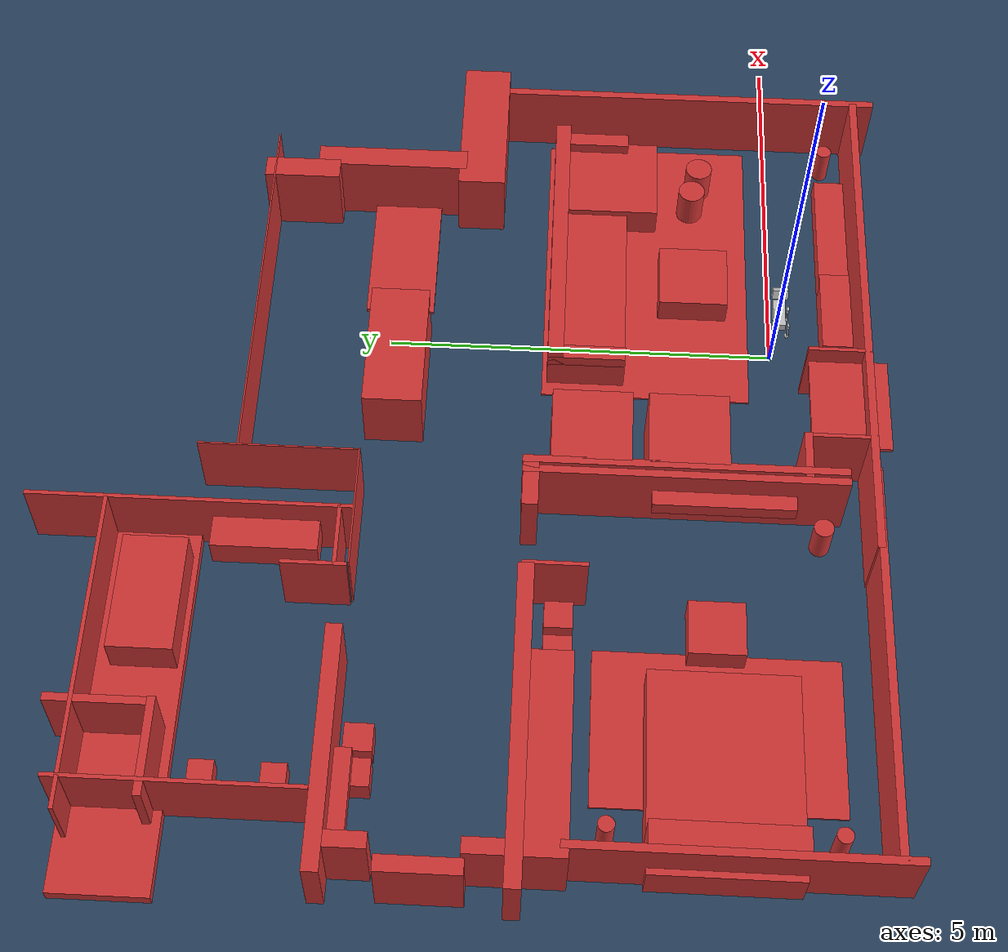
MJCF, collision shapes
<mujoco model="XXG scene">
  <include file="xxg.xml" />

  <statistic center="0 0 0.1" extent="0.8" />

  <visual>
    <headlight diffuse="0.6 0.6 0.6" ambient="0.3 0.3 0.3" specular="0 0 0" />
    <rgba haze="0.15 0.25 0.35 1" />
    <global azimuth="-130" elevation="-20" />
    <map znear="0.01" zfar="100"/>
  </visual>

  <asset>
    <texture type="skybox" builtin="gradient" rgb1="0.3 0.5 0.7" rgb2="0 0 0" width="512" height="3072" />
    <texture type="2d" name="groundplane" builtin="checker" mark="edge" rgb1="0.2 0.3 0.4" rgb2="0.1 0.2 0.3" markrgb="0.8 0.8 0.8" width="300" height="300" />
    <material name="groundplane" texture="groundplane" texuniform="true" texrepeat="5 5" reflectance="0.2" />
  <hfield name="perlin_hfield" size="1.0 0.75 0.2 0.2" file="../height_field.png" /><hfield name="image_hfield" size="1.0 1.0 0.02 0.1" file="../unitree_hfield.png" /></asset>

  <worldbody>
    <light pos="0 0 1.5" dir="0 0 -1" directional="true" />
    <geom name="floor" pos="0 0.0 0.01" size="0 0 0.01" type="plane" material="groundplane" />
<geom name="Box0" type="box" size="0.05 2.5 0.5" pos="3.65 1.1 0.5" euler="0.0 0.0 0.0" rgba="0.8 0.2 0.2 1"/>
<geom name="Box1" type="box" size="0.05 3.5 0.5" pos="0.15 -1.12 0.5" euler="0.0 0.0 1.570796" rgba="0.8 0.2 0.2 1"/>
<geom name="Box2" type="box" size="0.2 0.91 0.2" pos="1.94 -0.86 0.05" euler="0.0 0.0 1.570796" rgba="0.8 0.2 0.2 1"/>
<geom name="Box3" type="box" size="0.2 0.585 0.2" pos="0.62 -0.86 0.11" euler="0.0 0.0 1.570796" rgba="0.8 0.2 0.2 1"/>
<geom name="Box4" type="box" size="0.4 0.025 0.5" pos="-0.5 -0.76 0.5" euler="0.0 0.0 1.570796" rgba="0.8 0.2 0.2 1"/>
<geom name="Box5" type="box" size="0.4 0.025 0.5" pos="-1.8 -0.76 0.5" euler="0.0 0.0 1.570796" rgba="0.8 0.2 0.2 1"/>
<geom name="Box6" type="box" size="0.35 0.05 0.5" pos="-2.12 -0.31 0.5" euler="0.0 0.0 -0.0" rgba="0.8 0.2 0.2 1"/>
<geom name="Box7" type="box" size="2.0 0.05 0.5" pos="-2.32 1.19 0.5" euler="0.0 0.0 1.570796" rgba="0.8 0.2 0.2 1"/>
<geom name="Box8" type="box" size="1.0 0.01 0.5" pos="-2.3 6.19 0.5" euler="0.0 0.0 1.570796" rgba="0.8 0.2 0.2 1"/>
<geom name="Box9" type="box" size="2.5 0.01 0.5" pos="0.2 6.69 0.5" euler="0.0 0.0 3.141593" rgba="0.8 0.2 0.2 1"/>
<geom name="Box10" type="box" size="0.5 0.15 0.5" pos="2.14 6.32 0.5" euler="0.0 0.0 -1.570796" rgba="0.8 0.2 0.2 1"/>
<geom name="Box11" type="box" size="0.31 1.0 0.5" pos="3.0 3.91 0.5" euler="0.0 0.0 -1.570796" rgba="0.8 0.2 0.2 1"/>
<geom name="Box12" type="box" size="1.0 0.15 0.5" pos="2.37 5.12 0.5" euler="0.0 0.0 -1.570796" rgba="0.8 0.2 0.2 1"/>
<geom name="Box13" type="box" size="0.8 0.01 0.5" pos="-3.08 5.19 0.5" euler="0.0 0.0 3.141593" rgba="0.8 0.2 0.2 1"/>
<geom name="Box14" type="box" size="1.5 0.1 0.5" pos="-6.19 5.285 0.5" euler="0.0 0.0 3.141593" rgba="0.8 0.2 0.2 1"/>
<geom name="Box15" type="box" size="0.4 0.025 0.5" pos="-3.9 5.61 0.5" euler="0.0 0.0 -1.570796" rgba="0.8 0.2 0.2 1"/>
<geom name="Box16" type="box" size="1.5 0.025 0.5" pos="-6.72 6.89 0.5" euler="0.0 0.0 -1.570796" rgba="0.8 0.2 0.2 1"/>
<geom name="Box17" type="box" size="2.0 0.025 0.5" pos="-5.12 8.19 0.5" euler="0.0 0.0 -0.0" rgba="0.8 0.2 0.2 1"/>
<geom name="Box18" type="box" size="2.0 0.025 0.5" pos="-3.11 7.19 0.5" euler="0.0 0.0 1.570796" rgba="0.8 0.2 0.2 1"/>
<geom name="Box19" type="box" size="0.65 0.2 0.2" pos="-3.45 6.24 0.65" euler="0.0 0.0 -1.570796" rgba="0.8 0.2 0.2 1"/>
<geom name="Box20" type="box" size="0.4 0.025 0.5" pos="-3.5 5.36 0.5" euler="0.0 0.0 -0.0" rgba="0.8 0.2 0.2 1"/>
<geom name="Box21" type="box" size="0.2 0.15 0.15" pos="-6.42 5.86 0.3" euler="0.0 0.0 -0.0" rgba="0.8 0.2 0.2 1"/>
<geom name="Box22" type="box" size="0.2 0.15 0.15" pos="-6.42 6.7 0.3" euler="0.0 0.0 -0.0" rgba="0.8 0.2 0.2 1"/>
<geom name="Box23" type="box" size="0.6 0.05 0.5" pos="-6.32 7.27 0.5" euler="0.0 0.0 -0.0" rgba="0.8 0.2 0.2 1"/>
<geom name="Box24" type="box" size="0.6 0.05 0.5" pos="-5.78 7.92 0.5" euler="0.0 0.0 -1.570796" rgba="0.8 0.2 0.2 1"/>
<geom name="Box25" type="box" size="0.6 2.5 0.1" pos="-5.28 7.71 0.06" euler="0.0 0.0 -1.570796" rgba="0.8 0.2 0.2 1"/>
<geom name="Box26" type="box" size="0.4 0.75 0.25" pos="-4.23 7.57 0.46" euler="0.0 0.0 -1.570796" rgba="0.8 0.2 0.2 1"/>
<geom name="Box27" type="box" size="0.5 0.1 0.1" pos="-6.7 5.05 0.84" euler="0.0 0.0 3.141593" rgba="0.8 0.2 0.2 1"/>
<geom name="Box28" type="box" size="0.25 0.1 0.5" pos="-7.3 4.94 0.5" euler="0.0 0.0 1.570796" rgba="0.8 0.2 0.2 1"/>
<geom name="Box29" type="box" size="0.25 0.1 0.5" pos="-7.3 3.42 0.5" euler="0.0 0.0 1.570796" rgba="0.8 0.2 0.2 1"/>
<geom name="Box30" type="box" size="0.5 0.1 0.5" pos="-7.55 4.12 0.5" euler="0.0 0.0 1.570796" rgba="0.8 0.2 0.2 1"/>
<geom name="Box31" type="box" size="2.0 0.1 0.5" pos="-5.77 3.09 0.5" euler="0.0 0.0 -0.0" rgba="0.8 0.2 0.2 1"/>
<geom name="Box32" type="box" size="0.4 0.025 0.5" pos="-3.76 2.75 0.5" euler="0.0 0.0 -1.570796" rgba="0.8 0.2 0.2 1"/>
<geom name="Box33" type="box" size="0.3 0.1 0.5" pos="-2.67 3.08 0.5" euler="0.0 0.0 0.0" rgba="0.8 0.2 0.2 1"/>
<geom name="Box34" type="box" size="2.0 0.05 0.5" pos="-2.46 1.19 0.5" euler="0.0 0.0 1.570796" rgba="0.8 0.2 0.2 1"/>
<geom name="Box35" type="box" size="2.0 0.05 0.5" pos="-7.23 0.59 0.5" euler="0.0 0.0 1.570796" rgba="0.8 0.2 0.2 1"/>
<geom name="Box36" type="box" size="2.5 0.05 0.5" pos="-4.73 -1.14 0.5" euler="0.0 0.0 -0.0" rgba="0.8 0.2 0.2 1"/>
<geom name="Box37" type="box" size="1.25 0.25 0.5" pos="-6.15 2.74 0.5" euler="0.0 0.0 0.0" rgba="0.8 0.2 0.2 1"/>
<geom name="Box38" type="box" size="0.175 0.175 0.175" pos="-4.58 2.68 0.22" euler="0.0 0.0 0.0" rgba="0.8 0.2 0.2 1"/>
<geom name="Box39" type="box" size="0.175 0.175 0.175" pos="-4.13 2.68 0.22" euler="0.0 0.0 0.0" rgba="0.8 0.2 0.2 1"/>
<geom name="Box40" type="box" size="0.35 0.35 0.35" pos="-4.19 0.78 0.01" euler="0.0 0.0 0.0" rgba="0.8 0.2 0.2 1"/>
<geom name="Box41" type="box" size="1.25 0.9 0.35" pos="-6.11 0.73 0.18" euler="0.0 0.0 0.0" rgba="0.8 0.2 0.2 1"/>
<geom name="Box42" type="box" size="0.175 0.175 0.175" pos="-5.83 4.94 0.22" euler="0.0 0.0 0.0" rgba="0.8 0.2 0.2 1"/>
<geom name="Box43" type="box" size="0.175 0.175 0.175" pos="-6.26 4.94 0.22" euler="0.0 0.0 0.0" rgba="0.8 0.2 0.2 1"/>
<geom name="Box44" type="box" size="0.15 0.885 0.1" pos="-2.56 0.7 0.58" euler="0.0 0.0 0.0" rgba="0.8 0.2 0.2 1"/>
<geom name="Box45" type="box" size="0.45 0.45 0.35" pos="1.03 1.03 0.04" euler="0.0 0.0 0.0" rgba="0.8 0.2 0.2 1"/>
<geom name="Box46" type="box" size="2.1 1.35 0.025" pos="1.38 1.64 -0.004" euler="0.0 0.0 0.0" rgba="0.8 0.2 0.2 1"/>
<geom name="Box47" type="box" size="0.7 0.6 0.25" pos="2.64 2.22 0.19" euler="0.0 0.0 1.570796" rgba="0.8 0.2 0.2 1"/>
<geom name="Box48" type="box" size="0.5 1.25 0.25" pos="0.72 2.43 0.19" euler="0.0 0.0 1.570796" rgba="0.8 0.2 0.2 1"/>
<geom name="Box49" type="box" size="0.5 0.1 0.1" pos="-0.42 2.43 0.49" euler="0.0 0.0 1.570796" rgba="0.8 0.2 0.2 1"/>
<geom name="Box50" type="box" size="1.9 0.1 0.2" pos="1.38 2.83 0.55" euler="0.0 0.0 3.141593" rgba="0.8 0.2 0.2 1"/>
<geom name="Box51" type="box" size="0.5 0.1 0.1" pos="3.18 2.43 0.49" euler="0.0 0.0 1.570796" rgba="0.8 0.2 0.2 1"/>
<geom name="Box52" type="box" size="0.5 0.5 0.5" pos="-1.79 1.15 0.5" euler="0.0 0.0 0.0" rgba="0.8 0.2 0.2 1"/>
<geom name="Box53" type="box" size="0.5 0.5 0.5" pos="-1.79 2.35 0.5" euler="0.0 0.0 0.0" rgba="0.8 0.2 0.2 1"/>
<geom name="Box54" type="box" size="0.86 0.375 0.5" pos="-0.66 4.86 0.45" euler="0.0 0.0 3.141593" rgba="0.8 0.2 0.2 1"/>
<geom name="Box55" type="box" size="0.375 0.035 0.5" pos="1.2 4.85 0.28" euler="0.0 0.0 3.141593" rgba="0.8 0.2 0.2 1"/>
<geom name="Box56" type="box" size="0.86 0.435 0.025" pos="0.82 4.86 0.78" euler="0.0 0.0 3.141593" rgba="0.8 0.2 0.2 1"/>
<geom name="Cylinder57"  type="cylinder" size="0.1 0.25" pos="-6.78 2.07 0.25" rgba="0.8 0.2 0.2 1"/>
<geom name="Cylinder58"  type="cylinder" size="0.1 0.25" pos="-6.78 -0.6 0.25" rgba="0.8 0.2 0.2 1"/>
<geom name="Cylinder59"  type="cylinder" size="0.125 0.25" pos="-2.83 -0.53 0.25" rgba="0.8 0.2 0.2 1"/>
<geom name="Box60" type="box" size="0.15 0.9 0.35" pos="-7.01 0.73 0.57" euler="0.0 0.0 0.0" rgba="0.8 0.2 0.2 1"/>
<geom name="Box61" type="box" size="1.0 1.5 0.025" pos="-5.4 0.76 -0.004" euler="0.0 0.0 0.0" rgba="0.8 0.2 0.2 1"/>
<geom name="Cylinder62"  type="cylinder" size="0.1 0.25" pos="3.2 -0.78 0.25" rgba="0.8 0.2 0.2 1"/>
<geom name="Cylinder63"  type="cylinder" size="0.175 0.25" pos="2.8 0.95 0.25" rgba="0.8 0.2 0.2 1"/>
<geom name="Cylinder64"  type="cylinder" size="0.175 0.25" pos="2.4 1.05 0.25" rgba="0.8 0.2 0.2 1"/>
<geom name="Box65" type="box" size="0.65 0.5 0.025" pos="-1.16 -0.89 0.72" euler="0.0 0.0 0.0" rgba="0.8 0.2 0.2 1"/>
    </worldbody>
</mujoco>

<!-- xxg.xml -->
<mujoco model="DOG">
  <compiler angle="radian" meshdir="assets/"/>

  <asset>
    <mesh name="BASE_LINK" file="BASE_LINK.STL"/>
    <mesh name="FBL_ABAD_LINK" file="FBL_ABAD_LINK.STL"/>
    <mesh name="FBL_HIP_LINK" file="FBL_HIP_LINK.STL"/>
    <mesh name="FBL_KNEE_LINK" file="FBL_KNEE_LINK.STL"/>
    <mesh name="FBL_FOOT_LINK" file="FBL_FOOT_LINK.STL"/>
    <mesh name="FAR_ABAD_LINK" file="FAR_ABAD_LINK.STL"/>
    <mesh name="FAR_HIP_LINK" file="FAR_HIP_LINK.STL"/>
    <mesh name="FAR_KNEE_LINK" file="FAR_KNEE_LINK.STL"/>
    <mesh name="FAR_FOOT_LINK" file="FAR_FOOT_LINK.STL"/>
    <mesh name="RAR_ABAD_LINK" file="RAR_ABAD_LINK.STL"/>
    <mesh name="RAR_HIP_LINK" file="RAR_HIP_LINK.STL"/>
    <mesh name="RAR_KNEE_LINK" file="RAR_KNEE_LINK.STL"/>
    <mesh name="RAR_FOOT_LINK" file="RAR_FOOT_LINK.STL"/>
    <mesh name="RBL_ABAD_LINK" file="RBL_ABAD_LINK.STL"/>
    <mesh name="RBL_HIP_LINK" file="RBL_HIP_LINK.STL"/>
    <mesh name="RBL_KNEE_LINK" file="RBL_KNEE_LINK.STL"/>
    <mesh name="RBL_FOOT_LINK" file="RBL_FOOT_LINK.STL"/>
    <mesh name="HEAD1_LINK" file="HEAD1_LINK.STL"/>
    <mesh name="HEAD2_LINK" file="HEAD2_LINK.STL"/>
  </asset>

  <worldbody>
    <body name="BASE_LINK" pos="0 0 1.0">
      <inertial pos="1.8341473e-02 -1.9475667e-04 1.6646741e-02" quat="-0 0 0 1" mass="5.6608325" diaginertia="0.039340224 8.8059075e-02 7.6312096e-02"/>
      <freejoint />
      <site name="imu" pos="0.0 0 0.0" />
    <!-- add livox_imu -->
    <site name="livox_imu" pos="0.18 0.0 0.3" quat="1.0 0.0 0.0 0.0"/>
    <!-- add camera imu -->
    <site name="camera_imu" pos="0.18 0.0 0.3" quat="1.0 0.0 0.0 0.0"/>

    <geom type="mesh" contype="0" conaffinity="0" group="1" density="0" rgba="0.75294 0.75294 0.75294 1.0" mesh="BASE_LINK"/>
    <geom size="0.2 0.075 0.055" type="box" rgba="0.75294 0.75294 0.75294 0.0"/>
    <geom pos="0.1775 0 0.1164" quat="0.965249 0 0.26133 0" type="mesh" contype="0" conaffinity="0" group="1" density="0" rgba="0.75294 0.75294 0.75294 1.0" mesh="HEAD1_LINK"/>
    <geom pos="0.1775 0 0.1164" quat="0.965249 0 0.26133 0" type="mesh" contype="0" conaffinity="0" group="1" density="0" rgba="0.75294 0.75294 0.75294 1.0" mesh="HEAD2_LINK"/>
    <geom size="0.05 0.1 0.06" pos="0.204181 0 0.181884" quat="0.965249 0 0.26133 0" type="box" rgba="0.75294 0.75294 0.75294 0.0"/>
    <geom size="0.035 0.05 0.04" pos="0.27432 0 0.123528" quat="0.965249 0 0.26133 0" type="box" rgba="0.75294 0.75294 0.75294 0.0"/>
    <body name="FBL_ABAD_LINK" pos="0.1305 0.0377 0">
      <inertial pos="-0.0258732 0.00474653 0" quat="0.446156 0.446156 0.548585 0.548585" mass="0.29007" diaginertia="0.000234429 0.000228281 4.61129e-05"/>
      <joint name="FBL_ABAD_JOINT" pos="0 0 0" axis="1 0 0" range="-0.4887 0.4887" actuatorfrcrange="-20 20"/>
      <geom type="mesh" contype="0" conaffinity="0" group="1" density="0" rgba="0.75294 0.75294 0.75294 1.0" mesh="FBL_ABAD_LINK"/>
      <body name="FBL_HIP_LINK">
        <inertial pos="0 0.0475203 -0.0615104" quat="0.992663 0.120643 7.95638e-06 -0.00808508" mass="0.698577" diaginertia="0.00315469 0.00310141 0.000383698"/>
        <joint name="FBL_HIP_JOINT" pos="0 0 0" axis="0 1 0" range="-2.967 2.967" actuatorfrcrange="-20 20"/>
        <geom type="mesh" contype="0" conaffinity="0" group="1" density="0" rgba="0.75294 0.75294 0.75294 1.0" mesh="FBL_HIP_LINK"/>
        <geom size="0.025 0.015 0.03" pos="-0.01 0.085 -0.06" type="box" rgba="0.75294 0.75294 0.75294 1.0"/>
        <body name="FBL_KNEE_LINK" pos="0 0.08786 -0.1307">
          <inertial pos="0.00368489 0.0063771 -0.0635258" quat="0.608469 0.0177668 -0.0332576 0.792681" mass="0.288584" diaginertia="0.00161384 0.00159203 5.37708e-05"/>
          <joint name="FBL_KNEE_JOINT" pos="0 0 0" axis="0 1 0" range="-2.723 2.702" actuatorfrcrange="-20 20"/>
          <geom type="mesh" contype="0" conaffinity="0" group="1" density="0" rgba="0.49804 0.49804 0.49804 1.0" mesh="FBL_KNEE_LINK"/>
          <geom size="0.015 0.01 0.045" pos="0 0 -0.05" quat="0.994493 0 0.104807 0" type="box" rgba="0.49804 0.49804 0.49804 1.0"/>
          <geom pos="0 0 -0.1425" type="mesh" contype="0" conaffinity="0" group="1" density="0" rgba="0.75294 0.75294 0.75294 1.0" mesh="FBL_FOOT_LINK"/>
          <geom size="0.03" pos="0 0 -0.1425" quat="0.707388 0.706825 0 0" rgba="0.75294 0.75294 0.75294 1.0"/>
        </body>
      </body>
    </body>
    <body name="FAR_ABAD_LINK" pos="0.1305 -0.0377 0">
      <inertial pos="-0.0258732 -0.00474653 0" quat="0.548585 0.548585 0.446156 0.446156" mass="0.29007" diaginertia="0.000234429 0.000228281 4.61129e-05"/>
      <joint name="FAR_ABAD_JOINT" pos="0 0 0" axis="1 0 0" range="-0.4887 0.4887" actuatorfrcrange="-20 20"/>
      <geom type="mesh" contype="0" conaffinity="0" group="1" density="0" rgba="0.75294 0.75294 0.75294 1.0" mesh="FAR_ABAD_LINK"/>
      <body name="FAR_HIP_LINK">
        <inertial pos="0 -0.0475203 -0.0615104" quat="0.992663 -0.120643 7.95638e-06 0.00808508" mass="0.698577" diaginertia="0.00315469 0.00310141 0.000383698"/>
        <joint name="FAR_HIP_JOINT" pos="0 0 0" axis="0 1 0" range="-2.967 2.967" actuatorfrcrange="-20 20"/>
        <geom type="mesh" contype="0" conaffinity="0" group="1" density="0" rgba="0.75294 0.75294 0.75294 1.0" mesh="FAR_HIP_LINK"/>
        <geom size="0.025 0.015 0.03" pos="-0.01 -0.085 -0.06" type="box" rgba="0.75294 0.75294 0.75294 1.0"/>
        <body name="FAR_KNEE_LINK" pos="0 -0.08786 -0.1307">
          <inertial pos="0.00368489 -0.0063771 -0.0635258" quat="0.792681 -0.0332576 0.0177668 0.608469" mass="0.288584" diaginertia="0.00161384 0.00159203 5.37708e-05"/>
          <joint name="FAR_KNEE_JOINT" pos="0 0 0" axis="0 1 0" range="-2.723 2.702" actuatorfrcrange="-20 20"/>
          <geom type="mesh" contype="0" conaffinity="0" group="1" density="0" rgba="0.49804 0.49804 0.49804 1.0" mesh="FAR_KNEE_LINK"/>
          <geom size="0.015 0.01 0.045" pos="0 0 -0.05" quat="0.994493 0 0.104807 0" type="box" rgba="0.49804 0.49804 0.49804 1.0"/>
          <geom pos="0 0 -0.1425" type="mesh" contype="0" conaffinity="0" group="1" density="0" rgba="0.75294 0.75294 0.75294 1.0" mesh="FAR_FOOT_LINK"/>
          <geom size="0.03" pos="0 0 -0.1425" quat="0.707388 0.706825 0 0" rgba="0.75294 0.75294 0.75294 1.0"/>
        </body>
      </body>
    </body>
    <body name="RAR_ABAD_LINK" pos="-0.1305 -0.0377 0">
      <inertial pos="0.0258732 -0.00474653 0" quat="0.446156 0.446156 0.548585 0.548585" mass="0.29007" diaginertia="0.000234429 0.000228281 4.61129e-05"/>
      <joint name="RAR_ABAD_JOINT" pos="0 0 0" axis="1 0 0" range="-0.4887 0.4887" actuatorfrcrange="-20 20"/>
      <geom type="mesh" contype="0" conaffinity="0" group="1" density="0" rgba="0.75294 0.75294 0.75294 1.0" mesh="RAR_ABAD_LINK"/>
      <body name="RAR_HIP_LINK">
        <inertial pos="0 -0.0475203 -0.0615104" quat="0.992663 -0.120643 7.95638e-06 0.00808508" mass="0.698577" diaginertia="0.00315469 0.00310141 0.000383698"/>
        <joint name="RAR_HIP_JOINT" pos="0 0 0" axis="0 1 0" range="-2.967 2.967" actuatorfrcrange="-20 20"/>
        <geom type="mesh" contype="0" conaffinity="0" group="1" density="0" rgba="0.75294 0.75294 0.75294 1.0" mesh="RAR_HIP_LINK"/>
        <geom size="0.025 0.015 0.03" pos="0 -0.085 -0.06" type="box" rgba="0.75294 0.75294 0.75294 1.0"/>
        <body name="RAR_KNEE_LINK" pos="0 -0.08786 -0.1307">
          <inertial pos="0.00368489 -0.0063771 -0.0634925" quat="0.792566 -0.0333078 0.0177921 0.608615" mass="0.288584" diaginertia="0.0016124 0.00159058 5.37526e-05"/>
          <joint name="RAR_KNEE_JOINT" pos="0 0 0" axis="0 1 0" range="-2.723 2.702" actuatorfrcrange="-20 20"/>
          <geom type="mesh" contype="0" conaffinity="0" group="1" density="0" rgba="0.49804 0.49804 0.49804 1.0" mesh="RAR_KNEE_LINK"/>
          <geom size="0.015 0.01 0.045" pos="-0.01 0 -0.04" quat="0.930508 0 0.366273 0" type="box" rgba="0.49804 0.49804 0.49804 1.0"/>
          <geom pos="0 0 -0.1357" quat="1 0 0 0" type="mesh" contype="0" conaffinity="0" group="1" density="0" rgba="0.75294 0.75294 0.75294 1.0" mesh="RAR_FOOT_LINK"/>
          <geom size="0.03" pos="0 0 -0.1357" quat="0.707388 0.706825 0 0" rgba="0.75294 0.75294 0.75294 1.0"/>
        </body>
      </body>
    </body>
    <body name="RBL_ABAD_LINK" pos="-0.1305 0.0377 0">
      <inertial pos="0.0258732 0.00474653 0" quat="0.548585 0.548585 0.446156 0.446156" mass="0.29007" diaginertia="0.000234429 0.000228281 4.61129e-05"/>
      <joint name="RBL_ABAD_JOINT" pos="0 0 0" axis="1 0 0" range="-0.4887 0.4887" actuatorfrcrange="-20 20"/>
      <geom type="mesh" contype="0" conaffinity="0" group="1" density="0" rgba="0.75294 0.75294 0.75294 1.0" mesh="RBL_ABAD_LINK"/>
      <body name="RBL_HIP_LINK">
        <inertial pos="0 0.0475203 -0.0615104" quat="0.992663 0.120643 7.95638e-06 -0.00808508" mass="0.698577" diaginertia="0.00315469 0.00310141 0.000383698"/>
        <joint name="RBL_HIP_JOINT" pos="0 0 0" axis="0 1 0" range="-2.967 2.967" actuatorfrcrange="-20 20"/>
        <geom type="mesh" contype="0" conaffinity="0" group="1" density="0" rgba="0.75294 0.75294 0.75294 1.0" mesh="RBL_HIP_LINK"/>
        <geom size="0.025 0.015 0.03" pos="0 0.085 -0.06" type="box" rgba="0.75294 0.75294 0.75294 1.0"/>
        <body name="RBL_KNEE_LINK" pos="0 0.08786 -0.1307">
          <inertial pos="0.00368489 0.0063771 -0.0634925" quat="0.608615 0.0177921 -0.0333078 0.792566" mass="0.288584" diaginertia="0.0016124 0.00159058 5.37526e-05"/>
          <joint name="RBL_KNEE_JOINT" pos="0 0 0" axis="0 1 0" range="-2.723 2.702" actuatorfrcrange="-20 20"/>
          <geom type="mesh" contype="0" conaffinity="0" group="1" density="0" rgba="0.49804 0.49804 0.49804 1.0" mesh="RBL_KNEE_LINK"/>
          <geom size="0.015 0.01 0.045" pos="-0.01 0 -0.04" quat="0.930508 0 0.366273 0" type="box" rgba="0.49804 0.49804 0.49804 1.0"/>
          <geom pos="0 0 -0.1357" quat="1 0 0 0" type="mesh" contype="0" conaffinity="0" group="1" density="0" rgba="0.75294 0.75294 0.75294 1.0" mesh="RBL_FOOT_LINK"/>
          <geom size="0.03" pos="0 0 -0.1357" quat="0.707388 0.706825 0 0" rgba="0.75294 0.75294 0.75294 1.0"/>
        </body>
      </body>
    </body>
  </body>
  </worldbody>
    <actuator>
        <motor name="FR_ABAD_LINK" joint="FAR_ABAD_JOINT" />
        <motor name="FR_HIP_LINK" joint="FAR_HIP_JOINT" />
        <motor name="FR_KNEE_LINK" joint="FAR_KNEE_JOINT" />
        <motor name="FL_ABAD_LINK" joint="FBL_ABAD_JOINT" />
        <motor name="FL_HIP_LINK" joint="FBL_HIP_JOINT" />
        <motor name="FL_KNEE_LINK" joint="FBL_KNEE_JOINT" />
        <motor name="RR_ABAD_LINK" joint="RAR_ABAD_JOINT" />
        <motor name="RR_HIP_LINK" joint="RAR_HIP_JOINT" />
        <motor name="RR_KNEE_LINK" joint="RAR_KNEE_JOINT" />
        <motor name="RL_ABAD_LINK" joint="RBL_ABAD_JOINT" />
        <motor name="RL_HIP_LINK" joint="RBL_HIP_JOINT" />
        <motor name="RL_KNEE_LINK" joint="RBL_KNEE_JOINT" />
    </actuator>

    <sensor>
        <jointpos name="FR_hip_pos" joint="FAR_ABAD_JOINT" />
        <jointpos name="FR_thigh_pos" joint="FAR_HIP_JOINT" />
        <jointpos name="FR_calf_pos" joint="FAR_KNEE_JOINT" />
        <jointpos name="FL_hip_pos" joint="FBL_ABAD_JOINT" />
        <jointpos name="FL_thigh_pos" joint="FBL_HIP_JOINT" />
        <jointpos name="FL_calf_pos" joint="FBL_KNEE_JOINT" />
        <jointpos name="RR_hip_pos" joint="RAR_ABAD_JOINT" />
        <jointpos name="RR_thigh_pos" joint="RAR_HIP_JOINT" />
        <jointpos name="RR_calf_pos" joint="RAR_KNEE_JOINT" />
        <jointpos name="RL_hip_pos" joint="RBL_ABAD_JOINT" />
        <jointpos name="RL_thigh_pos" joint="RBL_HIP_JOINT" />
        <jointpos name="RL_calf_pos" joint="RBL_KNEE_JOINT" />

        <jointvel name="FR_hip_vel" joint="FAR_ABAD_JOINT" />
        <jointvel name="FR_thigh_vel" joint="FAR_HIP_JOINT" />
        <jointvel name="FR_calf_vel" joint="FAR_KNEE_JOINT" />
        <jointvel name="FL_hip_vel" joint="FBL_ABAD_JOINT" />
        <jointvel name="FL_thigh_vel" joint="FBL_HIP_JOINT" />
        <jointvel name="FL_calf_vel" joint="FBL_KNEE_JOINT" />
        <jointvel name="RR_hip_vel" joint="RAR_ABAD_JOINT" />
        <jointvel name="RR_thigh_vel" joint="RAR_HIP_JOINT" />
        <jointvel name="RR_calf_vel" joint="RAR_KNEE_JOINT" />
        <jointvel name="RL_hip_vel" joint="RBL_ABAD_JOINT" />
        <jointvel name="RL_thigh_vel" joint="RBL_HIP_JOINT" />
        <jointvel name="RL_calf_vel" joint="RBL_KNEE_JOINT" />

        <jointactuatorfrc name="FR_hip_torque" joint="FAR_ABAD_JOINT" noise="0.01" />
        <jointactuatorfrc name="FR_thigh_torque" joint="FAR_HIP_JOINT" noise="0.01" />
        <jointactuatorfrc name="FR_calf_torque" joint="FAR_KNEE_JOINT" noise="0.01" />
        <jointactuatorfrc name="FL_hip_torque" joint="FBL_ABAD_JOINT" noise="0.01" />
        <jointactuatorfrc name="FL_thigh_torque" joint="FBL_HIP_JOINT" noise="0.01" />
        <jointactuatorfrc name="FL_calf_torque" joint="FBL_KNEE_JOINT" noise="0.01" />
        <jointactuatorfrc name="RR_hip_torque" joint="RAR_ABAD_JOINT" noise="0.01" />
        <jointactuatorfrc name="RR_thigh_torque" joint="RAR_HIP_JOINT" noise="0.01" />
        <jointactuatorfrc name="RR_calf_torque" joint="RAR_KNEE_JOINT" noise="0.01" />
        <jointactuatorfrc name="RL_hip_torque" joint="RBL_ABAD_JOINT" noise="0.01" />
        <jointactuatorfrc name="RL_thigh_torque" joint="RBL_HIP_JOINT" noise="0.01" />
        <jointactuatorfrc name="RL_calf_torque" joint="RBL_KNEE_JOINT" noise="0.01" />

        <framequat name="imu_quat" objtype="site" objname="imu" />
        <gyro name="imu_gyro" site="imu" />
        <accelerometer name="imu_acc" site="imu" />

        <framepos name="frame_pos" objtype="site" objname="imu" />
        <framelinvel name="frame_vel" objtype="site" objname="imu" />

        <!-- add livox_imu -->
        <framequat name="livox_imu_quat" objtype="site" objname="livox_imu" />
        <gyro name="livox_imu_gyro" site="livox_imu" />
        <accelerometer name="livox_imu_acc" site="livox_imu" />

        <framepos name="livox_imu_frame_pos" objtype="site" objname="livox_imu" />
        <framelinvel name="livox_imu_frame_vel" objtype="site" objname="livox_imu" />

        <!-- add camera imu -->
        <framequat name="camera_imu_quat" objtype="site" objname="camera_imu" />
        <gyro name="camera_imu_gyro" site="camera_imu" />
        <accelerometer name="camera_imu_acc" site="camera_imu" />

        <framepos name="camera_imu_frame_pos" objtype="site" objname="camera_imu" />
        <framelinvel name="camera_imu_frame_vel" objtype="site" objname="camera_imu" />
    </sensor>

</mujoco>
